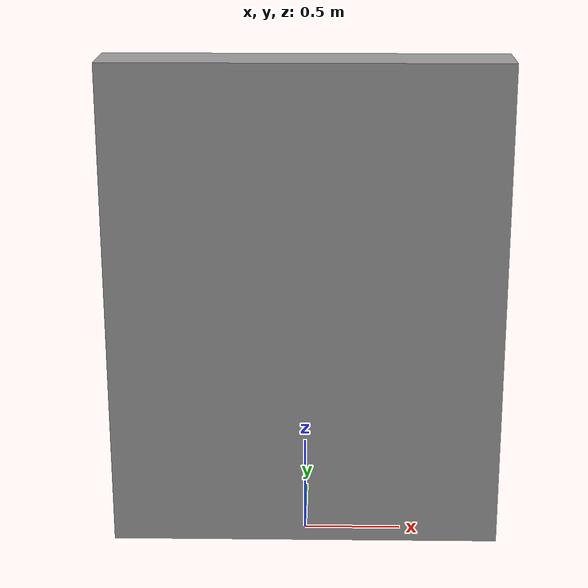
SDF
<?xml version="1.0" ?>
<sdf version="1.5">
  <model name="grey_wall">
    <static>true</static>
    <link name="link">
      <pose>0 0 1.25 0 0 0</pose>
      <collision name="collision">
        <geometry>
          <box>
            <size>2 0.3 2.5</size>
          </box>
        </geometry>
      </collision>
      <visual name="visual">
        <cast_shadows>false</cast_shadows>
        <geometry>
          <box>
            <size>2 0.3 2.5</size>
          </box>
        </geometry>
        <material>
          <script>
            <uri>model://w2/materials/scripts</uri>
            <uri>model://w2/materials/textures</uri>
            <name>vrc/grey_wall</name>
          </script>
        </material>
      </visual>
    </link>
  </model>
</sdf>
